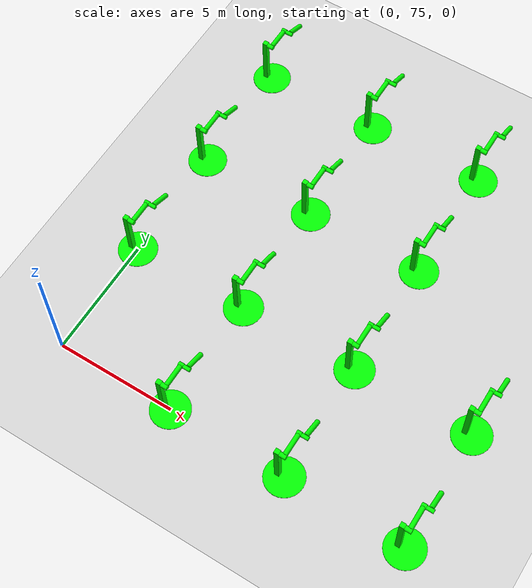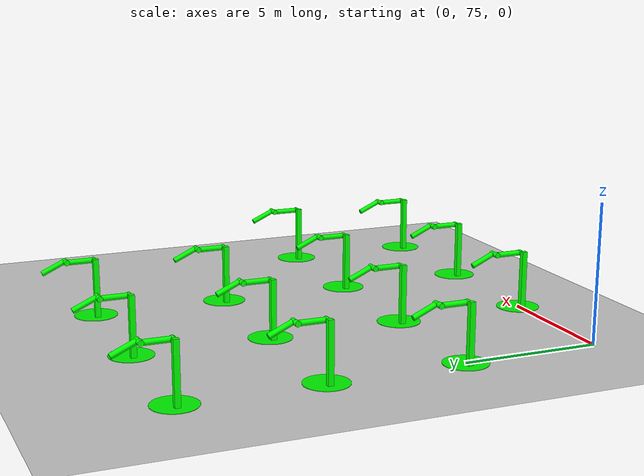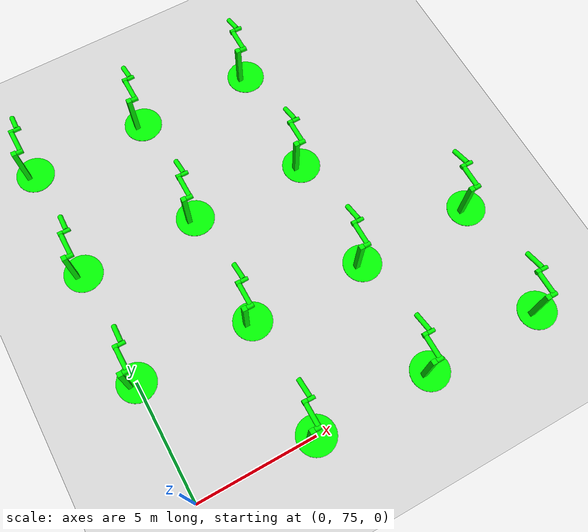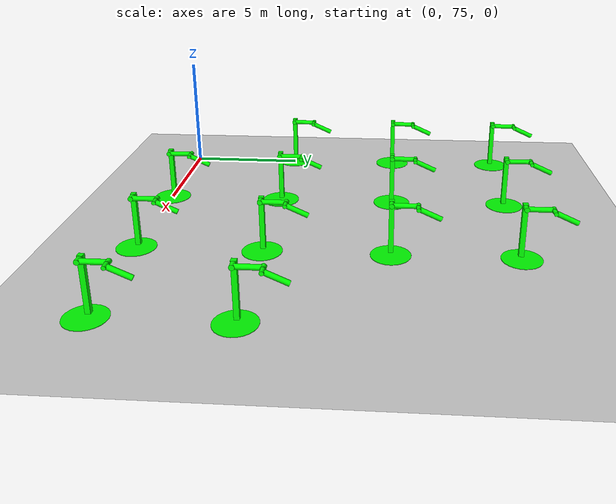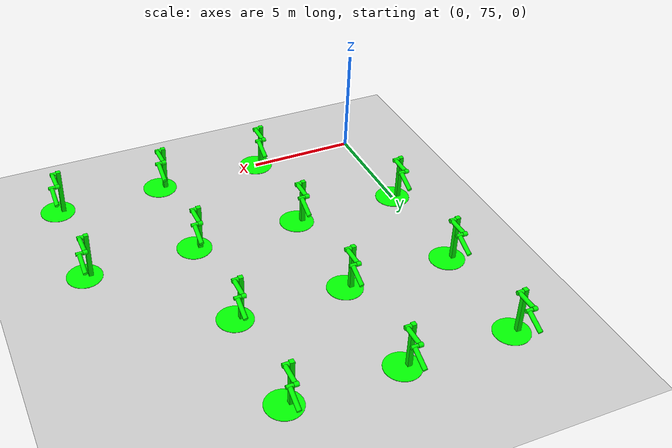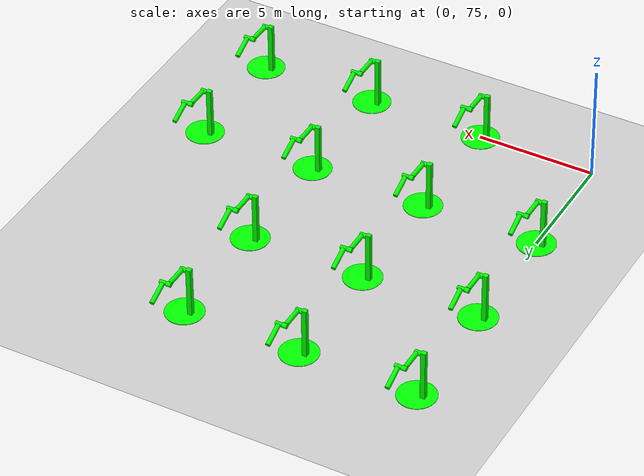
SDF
<sdf version="1.6">
 <world name="double_pendulums">
  <model name="ground_plane">
   <static>true</static>
   <link name="link">
    <collision name="collision">
     <geometry><plane><normal>0 0 1</normal><size>100 100</size></plane></geometry>
    </collision>
    <visual name="visual">
     <geometry><plane><normal>0 0 1</normal><size>100 100</size></plane></geometry>
     <material>
      <ambient>0.8 0.8 0.8 1</ambient>
      <diffuse>0.8 0.8 0.8 1</diffuse>
      <specular>0.8 0.8 0.8 1</specular>
     </material>
    </visual>
   </link>
  </model>
  <model name="dbl_pendulum_386">
   <pose>5 75 0 0 0 0</pose>
   <link name="base">
    <inertial><mass>100</mass></inertial>
    <visual name="vis_plate_on_ground">
     <pose>0 0 0.01 0 0 0</pose>
     <geometry><cylinder><radius>0.8</radius><length>0.02</length></cylinder></geometry>
     <material><ambient>0 1 0 1</ambient><diffuse>0 1 0 1</diffuse><specular>0 1 0 1</specular></material>
    </visual>
    <visual name="vis_pole">
     <pose>-0.275 0 1.1 0 0 0</pose>
     <geometry><box><size>0.2 0.2 2.2</size></box></geometry>
     <material><ambient>0 1 0 1</ambient><diffuse>0 1 0 1</diffuse><specular>0 1 0 1</specular></material>
    </visual>
    <collision name="col_plate_on_ground">
     <pose>0 0 0.01 0 0 0</pose>
     <geometry><cylinder><radius>0.8</radius><length>0.02</length></cylinder></geometry>
    </collision>
    <collision name="col_pole">
     <pose>-0.275 0 1.1 0 0 0</pose>
     <geometry><box><size>0.2 0.2 2.2</size></box></geometry>
    </collision>
   </link>
   <link name="upper_link">
    <pose>0 0 2.1 -1.5708 0 0</pose>
    <inertial><pose>0 0 0.5 0 0 0</pose></inertial>
    <visual name="vis_upper_joint">
     <pose>-0.05 0 0 0 1.5708 0</pose>
     <geometry><cylinder><radius>0.1</radius><length>0.3</length></cylinder></geometry>
     <material><ambient>0 1 0 1</ambient><diffuse>0 1 0 1</diffuse><specular>0 1 0 1</specular></material>
    </visual>
    <visual name="vis_lower_joint">
     <pose>0 0 1.0 0 1.5708 0</pose>
     <geometry><cylinder><radius>0.1</radius><length>0.2</length></cylinder></geometry>
     <material><ambient>0 1 0 1</ambient><diffuse>0 1 0 1</diffuse><specular>0 1 0 1</specular></material>
    </visual>
    <visual name="vis_cylinder">
     <pose>0 0 0.5 0 0 0</pose>
     <geometry><cylinder><radius>0.1</radius><length>0.9</length></cylinder></geometry>
     <material><ambient>0 1 0 1</ambient><diffuse>0 1 0 1</diffuse><specular>0 1 0 1</specular></material>
    </visual>
    <collision name="col_upper_joint">
     <pose>-0.05 0 0 0 1.5708 0</pose>
     <geometry><cylinder><radius>0.1</radius><length>0.3</length></cylinder></geometry>
    </collision>
    <collision name="col_lower_joint">
     <pose>0 0 1.0 0 1.5708 0</pose>
     <geometry><cylinder><radius>0.1</radius><length>0.2</length></cylinder></geometry>
    </collision>
    <collision name="col_cylinder">
     <pose>0 0 0.5 0 0 0</pose>
     <geometry><cylinder><radius>0.1</radius><length>0.9</length></cylinder></geometry>
    </collision>
   </link>
   <link name="lower_link">
    <pose>0.25 1.0 2.1 -2 0 0</pose>
    <inertial><pose>0 0 0.5 0 0 0</pose></inertial>
    <visual name="vis_lower_joint">
     <pose>0 0 0 0 1.5708 0</pose>
     <geometry><cylinder><radius>0.08</radius><length>0.3</length></cylinder></geometry>
     <material><ambient>0 1 0 1</ambient><diffuse>0 1 0 1</diffuse><specular>0 1 0 1</specular></material>
    </visual>
    <visual name="vis_cylinder">
     <pose>0 0 0.5 0 0 0</pose>
     <geometry><cylinder><radius>0.1</radius><length>0.9</length></cylinder></geometry>
     <material><ambient>0 1 0 1</ambient><diffuse>0 1 0 1</diffuse><specular>0 1 0 1</specular></material>
    </visual>
    <collision name="col_lower_joint">
     <pose>0 0 0 0 1.5708 0</pose>
     <geometry><cylinder><radius>0.08</radius><length>0.3</length></cylinder></geometry>
    </collision>
    <collision name="col_cylinder">
     <pose>0 0 0.5 0 0 0</pose>
     <geometry><cylinder><radius>0.1</radius><length>0.9</length></cylinder></geometry>
    </collision>
   </link>
   <joint name="upper_joint" type="revolute">
    <parent>base</parent>
    <child>upper_link</child>
    <axis><xyz>1.0 0 0</xyz></axis>
   </joint>
   <joint name="lower_joint" type="revolute">
    <parent>upper_link</parent>
    <child>lower_link</child>
    <axis><xyz>1.0 0 0</xyz></axis>
   </joint>
  </model>
  <model name="dbl_pendulum_387">
   <pose>10 75 0 0 0 0</pose>
   <link name="base">
    <inertial><mass>100</mass></inertial>
    <visual name="vis_plate_on_ground">
     <pose>0 0 0.01 0 0 0</pose>
     <geometry><cylinder><radius>0.8</radius><length>0.02</length></cylinder></geometry>
     <material><ambient>0 1 0 1</ambient><diffuse>0 1 0 1</diffuse><specular>0 1 0 1</specular></material>
    </visual>
    <visual name="vis_pole">
     <pose>-0.275 0 1.1 0 0 0</pose>
     <geometry><box><size>0.2 0.2 2.2</size></box></geometry>
     <material><ambient>0 1 0 1</ambient><diffuse>0 1 0 1</diffuse><specular>0 1 0 1</specular></material>
    </visual>
    <collision name="col_plate_on_ground">
     <pose>0 0 0.01 0 0 0</pose>
     <geometry><cylinder><radius>0.8</radius><length>0.02</length></cylinder></geometry>
    </collision>
    <collision name="col_pole">
     <pose>-0.275 0 1.1 0 0 0</pose>
     <geometry><box><size>0.2 0.2 2.2</size></box></geometry>
    </collision>
   </link>
   <link name="upper_link">
    <pose>0 0 2.1 -1.5708 0 0</pose>
    <inertial><pose>0 0 0.5 0 0 0</pose></inertial>
    <visual name="vis_upper_joint">
     <pose>-0.05 0 0 0 1.5708 0</pose>
     <geometry><cylinder><radius>0.1</radius><length>0.3</length></cylinder></geometry>
     <material><ambient>0 1 0 1</ambient><diffuse>0 1 0 1</diffuse><specular>0 1 0 1</specular></material>
    </visual>
    <visual name="vis_lower_joint">
     <pose>0 0 1.0 0 1.5708 0</pose>
     <geometry><cylinder><radius>0.1</radius><length>0.2</length></cylinder></geometry>
     <material><ambient>0 1 0 1</ambient><diffuse>0 1 0 1</diffuse><specular>0 1 0 1</specular></material>
    </visual>
    <visual name="vis_cylinder">
     <pose>0 0 0.5 0 0 0</pose>
     <geometry><cylinder><radius>0.1</radius><length>0.9</length></cylinder></geometry>
     <material><ambient>0 1 0 1</ambient><diffuse>0 1 0 1</diffuse><specular>0 1 0 1</specular></material>
    </visual>
    <collision name="col_upper_joint">
     <pose>-0.05 0 0 0 1.5708 0</pose>
     <geometry><cylinder><radius>0.1</radius><length>0.3</length></cylinder></geometry>
    </collision>
    <collision name="col_lower_joint">
     <pose>0 0 1.0 0 1.5708 0</pose>
     <geometry><cylinder><radius>0.1</radius><length>0.2</length></cylinder></geometry>
    </collision>
    <collision name="col_cylinder">
     <pose>0 0 0.5 0 0 0</pose>
     <geometry><cylinder><radius>0.1</radius><length>0.9</length></cylinder></geometry>
    </collision>
   </link>
   <link name="lower_link">
    <pose>0.25 1.0 2.1 -2 0 0</pose>
    <inertial><pose>0 0 0.5 0 0 0</pose></inertial>
    <visual name="vis_lower_joint">
     <pose>0 0 0 0 1.5708 0</pose>
     <geometry><cylinder><radius>0.08</radius><length>0.3</length></cylinder></geometry>
     <material><ambient>0 1 0 1</ambient><diffuse>0 1 0 1</diffuse><specular>0 1 0 1</specular></material>
    </visual>
    <visual name="vis_cylinder">
     <pose>0 0 0.5 0 0 0</pose>
     <geometry><cylinder><radius>0.1</radius><length>0.9</length></cylinder></geometry>
     <material><ambient>0 1 0 1</ambient><diffuse>0 1 0 1</diffuse><specular>0 1 0 1</specular></material>
    </visual>
    <collision name="col_lower_joint">
     <pose>0 0 0 0 1.5708 0</pose>
     <geometry><cylinder><radius>0.08</radius><length>0.3</length></cylinder></geometry>
    </collision>
    <collision name="col_cylinder">
     <pose>0 0 0.5 0 0 0</pose>
     <geometry><cylinder><radius>0.1</radius><length>0.9</length></cylinder></geometry>
    </collision>
   </link>
   <joint name="upper_joint" type="revolute">
    <parent>base</parent>
    <child>upper_link</child>
    <axis><xyz>1.0 0 0</xyz></axis>
   </joint>
   <joint name="lower_joint" type="revolute">
    <parent>upper_link</parent>
    <child>lower_link</child>
    <axis><xyz>1.0 0 0</xyz></axis>
   </joint>
  </model>
  <model name="dbl_pendulum_388">
   <pose>15 75 0 0 0 0</pose>
   <link name="base">
    <inertial><mass>100</mass></inertial>
    <visual name="vis_plate_on_ground">
     <pose>0 0 0.01 0 0 0</pose>
     <geometry><cylinder><radius>0.8</radius><length>0.02</length></cylinder></geometry>
     <material><ambient>0 1 0 1</ambient><diffuse>0 1 0 1</diffuse><specular>0 1 0 1</specular></material>
    </visual>
    <visual name="vis_pole">
     <pose>-0.275 0 1.1 0 0 0</pose>
     <geometry><box><size>0.2 0.2 2.2</size></box></geometry>
     <material><ambient>0 1 0 1</ambient><diffuse>0 1 0 1</diffuse><specular>0 1 0 1</specular></material>
    </visual>
    <collision name="col_plate_on_ground">
     <pose>0 0 0.01 0 0 0</pose>
     <geometry><cylinder><radius>0.8</radius><length>0.02</length></cylinder></geometry>
    </collision>
    <collision name="col_pole">
     <pose>-0.275 0 1.1 0 0 0</pose>
     <geometry><box><size>0.2 0.2 2.2</size></box></geometry>
    </collision>
   </link>
   <link name="upper_link">
    <pose>0 0 2.1 -1.5708 0 0</pose>
    <inertial><pose>0 0 0.5 0 0 0</pose></inertial>
    <visual name="vis_upper_joint">
     <pose>-0.05 0 0 0 1.5708 0</pose>
     <geometry><cylinder><radius>0.1</radius><length>0.3</length></cylinder></geometry>
     <material><ambient>0 1 0 1</ambient><diffuse>0 1 0 1</diffuse><specular>0 1 0 1</specular></material>
    </visual>
    <visual name="vis_lower_joint">
     <pose>0 0 1.0 0 1.5708 0</pose>
     <geometry><cylinder><radius>0.1</radius><length>0.2</length></cylinder></geometry>
     <material><ambient>0 1 0 1</ambient><diffuse>0 1 0 1</diffuse><specular>0 1 0 1</specular></material>
    </visual>
    <visual name="vis_cylinder">
     <pose>0 0 0.5 0 0 0</pose>
     <geometry><cylinder><radius>0.1</radius><length>0.9</length></cylinder></geometry>
     <material><ambient>0 1 0 1</ambient><diffuse>0 1 0 1</diffuse><specular>0 1 0 1</specular></material>
    </visual>
    <collision name="col_upper_joint">
     <pose>-0.05 0 0 0 1.5708 0</pose>
     <geometry><cylinder><radius>0.1</radius><length>0.3</length></cylinder></geometry>
    </collision>
    <collision name="col_lower_joint">
     <pose>0 0 1.0 0 1.5708 0</pose>
     <geometry><cylinder><radius>0.1</radius><length>0.2</length></cylinder></geometry>
    </collision>
    <collision name="col_cylinder">
     <pose>0 0 0.5 0 0 0</pose>
     <geometry><cylinder><radius>0.1</radius><length>0.9</length></cylinder></geometry>
    </collision>
   </link>
   <link name="lower_link">
    <pose>0.25 1.0 2.1 -2 0 0</pose>
    <inertial><pose>0 0 0.5 0 0 0</pose></inertial>
    <visual name="vis_lower_joint">
     <pose>0 0 0 0 1.5708 0</pose>
     <geometry><cylinder><radius>0.08</radius><length>0.3</length></cylinder></geometry>
     <material><ambient>0 1 0 1</ambient><diffuse>0 1 0 1</diffuse><specular>0 1 0 1</specular></material>
    </visual>
    <visual name="vis_cylinder">
     <pose>0 0 0.5 0 0 0</pose>
     <geometry><cylinder><radius>0.1</radius><length>0.9</length></cylinder></geometry>
     <material><ambient>0 1 0 1</ambient><diffuse>0 1 0 1</diffuse><specular>0 1 0 1</specular></material>
    </visual>
    <collision name="col_lower_joint">
     <pose>0 0 0 0 1.5708 0</pose>
     <geometry><cylinder><radius>0.08</radius><length>0.3</length></cylinder></geometry>
    </collision>
    <collision name="col_cylinder">
     <pose>0 0 0.5 0 0 0</pose>
     <geometry><cylinder><radius>0.1</radius><length>0.9</length></cylinder></geometry>
    </collision>
   </link>
   <joint name="upper_joint" type="revolute">
    <parent>base</parent>
    <child>upper_link</child>
    <axis><xyz>1.0 0 0</xyz></axis>
   </joint>
   <joint name="lower_joint" type="revolute">
    <parent>upper_link</parent>
    <child>lower_link</child>
    <axis><xyz>1.0 0 0</xyz></axis>
   </joint>
  </model>
  <model name="dbl_pendulum_410">
   <pose>0 80 0 0 0 0</pose>
   <link name="base">
    <inertial><mass>100</mass></inertial>
    <visual name="vis_plate_on_ground">
     <pose>0 0 0.01 0 0 0</pose>
     <geometry><cylinder><radius>0.8</radius><length>0.02</length></cylinder></geometry>
     <material><ambient>0 1 0 1</ambient><diffuse>0 1 0 1</diffuse><specular>0 1 0 1</specular></material>
    </visual>
    <visual name="vis_pole">
     <pose>-0.275 0 1.1 0 0 0</pose>
     <geometry><box><size>0.2 0.2 2.2</size></box></geometry>
     <material><ambient>0 1 0 1</ambient><diffuse>0 1 0 1</diffuse><specular>0 1 0 1</specular></material>
    </visual>
    <collision name="col_plate_on_ground">
     <pose>0 0 0.01 0 0 0</pose>
     <geometry><cylinder><radius>0.8</radius><length>0.02</length></cylinder></geometry>
    </collision>
    <collision name="col_pole">
     <pose>-0.275 0 1.1 0 0 0</pose>
     <geometry><box><size>0.2 0.2 2.2</size></box></geometry>
    </collision>
   </link>
   <link name="upper_link">
    <pose>0 0 2.1 -1.5708 0 0</pose>
    <inertial><pose>0 0 0.5 0 0 0</pose></inertial>
    <visual name="vis_upper_joint">
     <pose>-0.05 0 0 0 1.5708 0</pose>
     <geometry><cylinder><radius>0.1</radius><length>0.3</length></cylinder></geometry>
     <material><ambient>0 1 0 1</ambient><diffuse>0 1 0 1</diffuse><specular>0 1 0 1</specular></material>
    </visual>
    <visual name="vis_lower_joint">
     <pose>0 0 1.0 0 1.5708 0</pose>
     <geometry><cylinder><radius>0.1</radius><length>0.2</length></cylinder></geometry>
     <material><ambient>0 1 0 1</ambient><diffuse>0 1 0 1</diffuse><specular>0 1 0 1</specular></material>
    </visual>
    <visual name="vis_cylinder">
     <pose>0 0 0.5 0 0 0</pose>
     <geometry><cylinder><radius>0.1</radius><length>0.9</length></cylinder></geometry>
     <material><ambient>0 1 0 1</ambient><diffuse>0 1 0 1</diffuse><specular>0 1 0 1</specular></material>
    </visual>
    <collision name="col_upper_joint">
     <pose>-0.05 0 0 0 1.5708 0</pose>
     <geometry><cylinder><radius>0.1</radius><length>0.3</length></cylinder></geometry>
    </collision>
    <collision name="col_lower_joint">
     <pose>0 0 1.0 0 1.5708 0</pose>
     <geometry><cylinder><radius>0.1</radius><length>0.2</length></cylinder></geometry>
    </collision>
    <collision name="col_cylinder">
     <pose>0 0 0.5 0 0 0</pose>
     <geometry><cylinder><radius>0.1</radius><length>0.9</length></cylinder></geometry>
    </collision>
   </link>
   <link name="lower_link">
    <pose>0.25 1.0 2.1 -2 0 0</pose>
    <inertial><pose>0 0 0.5 0 0 0</pose></inertial>
    <visual name="vis_lower_joint">
     <pose>0 0 0 0 1.5708 0</pose>
     <geometry><cylinder><radius>0.08</radius><length>0.3</length></cylinder></geometry>
     <material><ambient>0 1 0 1</ambient><diffuse>0 1 0 1</diffuse><specular>0 1 0 1</specular></material>
    </visual>
    <visual name="vis_cylinder">
     <pose>0 0 0.5 0 0 0</pose>
     <geometry><cylinder><radius>0.1</radius><length>0.9</length></cylinder></geometry>
     <material><ambient>0 1 0 1</ambient><diffuse>0 1 0 1</diffuse><specular>0 1 0 1</specular></material>
    </visual>
    <collision name="col_lower_joint">
     <pose>0 0 0 0 1.5708 0</pose>
     <geometry><cylinder><radius>0.08</radius><length>0.3</length></cylinder></geometry>
    </collision>
    <collision name="col_cylinder">
     <pose>0 0 0.5 0 0 0</pose>
     <geometry><cylinder><radius>0.1</radius><length>0.9</length></cylinder></geometry>
    </collision>
   </link>
   <joint name="upper_joint" type="revolute">
    <parent>base</parent>
    <child>upper_link</child>
    <axis><xyz>1.0 0 0</xyz></axis>
   </joint>
   <joint name="lower_joint" type="revolute">
    <parent>upper_link</parent>
    <child>lower_link</child>
    <axis><xyz>1.0 0 0</xyz></axis>
   </joint>
  </model>
  <model name="dbl_pendulum_411">
   <pose>5 80 0 0 0 0</pose>
   <link name="base">
    <inertial><mass>100</mass></inertial>
    <visual name="vis_plate_on_ground">
     <pose>0 0 0.01 0 0 0</pose>
     <geometry><cylinder><radius>0.8</radius><length>0.02</length></cylinder></geometry>
     <material><ambient>0 1 0 1</ambient><diffuse>0 1 0 1</diffuse><specular>0 1 0 1</specular></material>
    </visual>
    <visual name="vis_pole">
     <pose>-0.275 0 1.1 0 0 0</pose>
     <geometry><box><size>0.2 0.2 2.2</size></box></geometry>
     <material><ambient>0 1 0 1</ambient><diffuse>0 1 0 1</diffuse><specular>0 1 0 1</specular></material>
    </visual>
    <collision name="col_plate_on_ground">
     <pose>0 0 0.01 0 0 0</pose>
     <geometry><cylinder><radius>0.8</radius><length>0.02</length></cylinder></geometry>
    </collision>
    <collision name="col_pole">
     <pose>-0.275 0 1.1 0 0 0</pose>
     <geometry><box><size>0.2 0.2 2.2</size></box></geometry>
    </collision>
   </link>
   <link name="upper_link">
    <pose>0 0 2.1 -1.5708 0 0</pose>
    <inertial><pose>0 0 0.5 0 0 0</pose></inertial>
    <visual name="vis_upper_joint">
     <pose>-0.05 0 0 0 1.5708 0</pose>
     <geometry><cylinder><radius>0.1</radius><length>0.3</length></cylinder></geometry>
     <material><ambient>0 1 0 1</ambient><diffuse>0 1 0 1</diffuse><specular>0 1 0 1</specular></material>
    </visual>
    <visual name="vis_lower_joint">
     <pose>0 0 1.0 0 1.5708 0</pose>
     <geometry><cylinder><radius>0.1</radius><length>0.2</length></cylinder></geometry>
     <material><ambient>0 1 0 1</ambient><diffuse>0 1 0 1</diffuse><specular>0 1 0 1</specular></material>
    </visual>
    <visual name="vis_cylinder">
     <pose>0 0 0.5 0 0 0</pose>
     <geometry><cylinder><radius>0.1</radius><length>0.9</length></cylinder></geometry>
     <material><ambient>0 1 0 1</ambient><diffuse>0 1 0 1</diffuse><specular>0 1 0 1</specular></material>
    </visual>
    <collision name="col_upper_joint">
     <pose>-0.05 0 0 0 1.5708 0</pose>
     <geometry><cylinder><radius>0.1</radius><length>0.3</length></cylinder></geometry>
    </collision>
    <collision name="col_lower_joint">
     <pose>0 0 1.0 0 1.5708 0</pose>
     <geometry><cylinder><radius>0.1</radius><length>0.2</length></cylinder></geometry>
    </collision>
    <collision name="col_cylinder">
     <pose>0 0 0.5 0 0 0</pose>
     <geometry><cylinder><radius>0.1</radius><length>0.9</length></cylinder></geometry>
    </collision>
   </link>
   <link name="lower_link">
    <pose>0.25 1.0 2.1 -2 0 0</pose>
    <inertial><pose>0 0 0.5 0 0 0</pose></inertial>
    <visual name="vis_lower_joint">
     <pose>0 0 0 0 1.5708 0</pose>
     <geometry><cylinder><radius>0.08</radius><length>0.3</length></cylinder></geometry>
     <material><ambient>0 1 0 1</ambient><diffuse>0 1 0 1</diffuse><specular>0 1 0 1</specular></material>
    </visual>
    <visual name="vis_cylinder">
     <pose>0 0 0.5 0 0 0</pose>
     <geometry><cylinder><radius>0.1</radius><length>0.9</length></cylinder></geometry>
     <material><ambient>0 1 0 1</ambient><diffuse>0 1 0 1</diffuse><specular>0 1 0 1</specular></material>
    </visual>
    <collision name="col_lower_joint">
     <pose>0 0 0 0 1.5708 0</pose>
     <geometry><cylinder><radius>0.08</radius><length>0.3</length></cylinder></geometry>
    </collision>
    <collision name="col_cylinder">
     <pose>0 0 0.5 0 0 0</pose>
     <geometry><cylinder><radius>0.1</radius><length>0.9</length></cylinder></geometry>
    </collision>
   </link>
   <joint name="upper_joint" type="revolute">
    <parent>base</parent>
    <child>upper_link</child>
    <axis><xyz>1.0 0 0</xyz></axis>
   </joint>
   <joint name="lower_joint" type="revolute">
    <parent>upper_link</parent>
    <child>lower_link</child>
    <axis><xyz>1.0 0 0</xyz></axis>
   </joint>
  </model>
  <model name="dbl_pendulum_412">
   <pose>10 80 0 0 0 0</pose>
   <link name="base">
    <inertial><mass>100</mass></inertial>
    <visual name="vis_plate_on_ground">
     <pose>0 0 0.01 0 0 0</pose>
     <geometry><cylinder><radius>0.8</radius><length>0.02</length></cylinder></geometry>
     <material><ambient>0 1 0 1</ambient><diffuse>0 1 0 1</diffuse><specular>0 1 0 1</specular></material>
    </visual>
    <visual name="vis_pole">
     <pose>-0.275 0 1.1 0 0 0</pose>
     <geometry><box><size>0.2 0.2 2.2</size></box></geometry>
     <material><ambient>0 1 0 1</ambient><diffuse>0 1 0 1</diffuse><specular>0 1 0 1</specular></material>
    </visual>
    <collision name="col_plate_on_ground">
     <pose>0 0 0.01 0 0 0</pose>
     <geometry><cylinder><radius>0.8</radius><length>0.02</length></cylinder></geometry>
    </collision>
    <collision name="col_pole">
     <pose>-0.275 0 1.1 0 0 0</pose>
     <geometry><box><size>0.2 0.2 2.2</size></box></geometry>
    </collision>
   </link>
   <link name="upper_link">
    <pose>0 0 2.1 -1.5708 0 0</pose>
    <inertial><pose>0 0 0.5 0 0 0</pose></inertial>
    <visual name="vis_upper_joint">
     <pose>-0.05 0 0 0 1.5708 0</pose>
     <geometry><cylinder><radius>0.1</radius><length>0.3</length></cylinder></geometry>
     <material><ambient>0 1 0 1</ambient><diffuse>0 1 0 1</diffuse><specular>0 1 0 1</specular></material>
    </visual>
    <visual name="vis_lower_joint">
     <pose>0 0 1.0 0 1.5708 0</pose>
     <geometry><cylinder><radius>0.1</radius><length>0.2</length></cylinder></geometry>
     <material><ambient>0 1 0 1</ambient><diffuse>0 1 0 1</diffuse><specular>0 1 0 1</specular></material>
    </visual>
    <visual name="vis_cylinder">
     <pose>0 0 0.5 0 0 0</pose>
     <geometry><cylinder><radius>0.1</radius><length>0.9</length></cylinder></geometry>
     <material><ambient>0 1 0 1</ambient><diffuse>0 1 0 1</diffuse><specular>0 1 0 1</specular></material>
    </visual>
    <collision name="col_upper_joint">
     <pose>-0.05 0 0 0 1.5708 0</pose>
     <geometry><cylinder><radius>0.1</radius><length>0.3</length></cylinder></geometry>
    </collision>
    <collision name="col_lower_joint">
     <pose>0 0 1.0 0 1.5708 0</pose>
     <geometry><cylinder><radius>0.1</radius><length>0.2</length></cylinder></geometry>
    </collision>
    <collision name="col_cylinder">
     <pose>0 0 0.5 0 0 0</pose>
     <geometry><cylinder><radius>0.1</radius><length>0.9</length></cylinder></geometry>
    </collision>
   </link>
   <link name="lower_link">
    <pose>0.25 1.0 2.1 -2 0 0</pose>
    <inertial><pose>0 0 0.5 0 0 0</pose></inertial>
    <visual name="vis_lower_joint">
     <pose>0 0 0 0 1.5708 0</pose>
     <geometry><cylinder><radius>0.08</radius><length>0.3</length></cylinder></geometry>
     <material><ambient>0 1 0 1</ambient><diffuse>0 1 0 1</diffuse><specular>0 1 0 1</specular></material>
    </visual>
    <visual name="vis_cylinder">
     <pose>0 0 0.5 0 0 0</pose>
     <geometry><cylinder><radius>0.1</radius><length>0.9</length></cylinder></geometry>
     <material><ambient>0 1 0 1</ambient><diffuse>0 1 0 1</diffuse><specular>0 1 0 1</specular></material>
    </visual>
    <collision name="col_lower_joint">
     <pose>0 0 0 0 1.5708 0</pose>
     <geometry><cylinder><radius>0.08</radius><length>0.3</length></cylinder></geometry>
    </collision>
    <collision name="col_cylinder">
     <pose>0 0 0.5 0 0 0</pose>
     <geometry><cylinder><radius>0.1</radius><length>0.9</length></cylinder></geometry>
    </collision>
   </link>
   <joint name="upper_joint" type="revolute">
    <parent>base</parent>
    <child>upper_link</child>
    <axis><xyz>1.0 0 0</xyz></axis>
   </joint>
   <joint name="lower_joint" type="revolute">
    <parent>upper_link</parent>
    <child>lower_link</child>
    <axis><xyz>1.0 0 0</xyz></axis>
   </joint>
  </model>
  <model name="dbl_pendulum_413">
   <pose>15 80 0 0 0 0</pose>
   <link name="base">
    <inertial><mass>100</mass></inertial>
    <visual name="vis_plate_on_ground">
     <pose>0 0 0.01 0 0 0</pose>
     <geometry><cylinder><radius>0.8</radius><length>0.02</length></cylinder></geometry>
     <material><ambient>0 1 0 1</ambient><diffuse>0 1 0 1</diffuse><specular>0 1 0 1</specular></material>
    </visual>
    <visual name="vis_pole">
     <pose>-0.275 0 1.1 0 0 0</pose>
     <geometry><box><size>0.2 0.2 2.2</size></box></geometry>
     <material><ambient>0 1 0 1</ambient><diffuse>0 1 0 1</diffuse><specular>0 1 0 1</specular></material>
    </visual>
    <collision name="col_plate_on_ground">
     <pose>0 0 0.01 0 0 0</pose>
     <geometry><cylinder><radius>0.8</radius><length>0.02</length></cylinder></geometry>
    </collision>
    <collision name="col_pole">
     <pose>-0.275 0 1.1 0 0 0</pose>
     <geometry><box><size>0.2 0.2 2.2</size></box></geometry>
    </collision>
   </link>
   <link name="upper_link">
    <pose>0 0 2.1 -1.5708 0 0</pose>
    <inertial><pose>0 0 0.5 0 0 0</pose></inertial>
    <visual name="vis_upper_joint">
     <pose>-0.05 0 0 0 1.5708 0</pose>
     <geometry><cylinder><radius>0.1</radius><length>0.3</length></cylinder></geometry>
     <material><ambient>0 1 0 1</ambient><diffuse>0 1 0 1</diffuse><specular>0 1 0 1</specular></material>
    </visual>
    <visual name="vis_lower_joint">
     <pose>0 0 1.0 0 1.5708 0</pose>
     <geometry><cylinder><radius>0.1</radius><length>0.2</length></cylinder></geometry>
     <material><ambient>0 1 0 1</ambient><diffuse>0 1 0 1</diffuse><specular>0 1 0 1</specular></material>
    </visual>
    <visual name="vis_cylinder">
     <pose>0 0 0.5 0 0 0</pose>
     <geometry><cylinder><radius>0.1</radius><length>0.9</length></cylinder></geometry>
     <material><ambient>0 1 0 1</ambient><diffuse>0 1 0 1</diffuse><specular>0 1 0 1</specular></material>
    </visual>
    <collision name="col_upper_joint">
     <pose>-0.05 0 0 0 1.5708 0</pose>
     <geometry><cylinder><radius>0.1</radius><length>0.3</length></cylinder></geometry>
    </collision>
    <collision name="col_lower_joint">
     <pose>0 0 1.0 0 1.5708 0</pose>
     <geometry><cylinder><radius>0.1</radius><length>0.2</length></cylinder></geometry>
    </collision>
    <collision name="col_cylinder">
     <pose>0 0 0.5 0 0 0</pose>
     <geometry><cylinder><radius>0.1</radius><length>0.9</length></cylinder></geometry>
    </collision>
   </link>
   <link name="lower_link">
    <pose>0.25 1.0 2.1 -2 0 0</pose>
    <inertial><pose>0 0 0.5 0 0 0</pose></inertial>
    <visual name="vis_lower_joint">
     <pose>0 0 0 0 1.5708 0</pose>
     <geometry><cylinder><radius>0.08</radius><length>0.3</length></cylinder></geometry>
     <material><ambient>0 1 0 1</ambient><diffuse>0 1 0 1</diffuse><specular>0 1 0 1</specular></material>
    </visual>
    <visual name="vis_cylinder">
     <pose>0 0 0.5 0 0 0</pose>
     <geometry><cylinder><radius>0.1</radius><length>0.9</length></cylinder></geometry>
     <material><ambient>0 1 0 1</ambient><diffuse>0 1 0 1</diffuse><specular>0 1 0 1</specular></material>
    </visual>
    <collision name="col_lower_joint">
     <pose>0 0 0 0 1.5708 0</pose>
     <geometry><cylinder><radius>0.08</radius><length>0.3</length></cylinder></geometry>
    </collision>
    <collision name="col_cylinder">
     <pose>0 0 0.5 0 0 0</pose>
     <geometry><cylinder><radius>0.1</radius><length>0.9</length></cylinder></geometry>
    </collision>
   </link>
   <joint name="upper_joint" type="revolute">
    <parent>base</parent>
    <child>upper_link</child>
    <axis><xyz>1.0 0 0</xyz></axis>
   </joint>
   <joint name="lower_joint" type="revolute">
    <parent>upper_link</parent>
    <child>lower_link</child>
    <axis><xyz>1.0 0 0</xyz></axis>
   </joint>
  </model>
  <model name="dbl_pendulum_435">
   <pose>0 85 0 0 0 0</pose>
   <link name="base">
    <inertial><mass>100</mass></inertial>
    <visual name="vis_plate_on_ground">
     <pose>0 0 0.01 0 0 0</pose>
     <geometry><cylinder><radius>0.8</radius><length>0.02</length></cylinder></geometry>
     <material><ambient>0 1 0 1</ambient><diffuse>0 1 0 1</diffuse><specular>0 1 0 1</specular></material>
    </visual>
    <visual name="vis_pole">
     <pose>-0.275 0 1.1 0 0 0</pose>
     <geometry><box><size>0.2 0.2 2.2</size></box></geometry>
     <material><ambient>0 1 0 1</ambient><diffuse>0 1 0 1</diffuse><specular>0 1 0 1</specular></material>
    </visual>
    <collision name="col_plate_on_ground">
     <pose>0 0 0.01 0 0 0</pose>
     <geometry><cylinder><radius>0.8</radius><length>0.02</length></cylinder></geometry>
    </collision>
    <collision name="col_pole">
     <pose>-0.275 0 1.1 0 0 0</pose>
     <geometry><box><size>0.2 0.2 2.2</size></box></geometry>
    </collision>
   </link>
   <link name="upper_link">
    <pose>0 0 2.1 -1.5708 0 0</pose>
    <inertial><pose>0 0 0.5 0 0 0</pose></inertial>
    <visual name="vis_upper_joint">
     <pose>-0.05 0 0 0 1.5708 0</pose>
     <geometry><cylinder><radius>0.1</radius><length>0.3</length></cylinder></geometry>
     <material><ambient>0 1 0 1</ambient><diffuse>0 1 0 1</diffuse><specular>0 1 0 1</specular></material>
    </visual>
    <visual name="vis_lower_joint">
     <pose>0 0 1.0 0 1.5708 0</pose>
     <geometry><cylinder><radius>0.1</radius><length>0.2</length></cylinder></geometry>
     <material><ambient>0 1 0 1</ambient><diffuse>0 1 0 1</diffuse><specular>0 1 0 1</specular></material>
    </visual>
    <visual name="vis_cylinder">
     <pose>0 0 0.5 0 0 0</pose>
     <geometry><cylinder><radius>0.1</radius><length>0.9</length></cylinder></geometry>
     <material><ambient>0 1 0 1</ambient><diffuse>0 1 0 1</diffuse><specular>0 1 0 1</specular></material>
    </visual>
    <collision name="col_upper_joint">
     <pose>-0.05 0 0 0 1.5708 0</pose>
     <geometry><cylinder><radius>0.1</radius><length>0.3</length></cylinder></geometry>
    </collision>
    <collision name="col_lower_joint">
     <pose>0 0 1.0 0 1.5708 0</pose>
     <geometry><cylinder><radius>0.1</radius><length>0.2</length></cylinder></geometry>
    </collision>
    <collision name="col_cylinder">
     <pose>0 0 0.5 0 0 0</pose>
     <geometry><cylinder><radius>0.1</radius><length>0.9</length></cylinder></geometry>
    </collision>
   </link>
   <link name="lower_link">
    <pose>0.25 1.0 2.1 -2 0 0</pose>
    <inertial><pose>0 0 0.5 0 0 0</pose></inertial>
    <visual name="vis_lower_joint">
     <pose>0 0 0 0 1.5708 0</pose>
     <geometry><cylinder><radius>0.08</radius><length>0.3</length></cylinder></geometry>
     <material><ambient>0 1 0 1</ambient><diffuse>0 1 0 1</diffuse><specular>0 1 0 1</specular></material>
    </visual>
    <visual name="vis_cylinder">
     <pose>0 0 0.5 0 0 0</pose>
     <geometry><cylinder><radius>0.1</radius><length>0.9</length></cylinder></geometry>
     <material><ambient>0 1 0 1</ambient><diffuse>0 1 0 1</diffuse><specular>0 1 0 1</specular></material>
    </visual>
    <collision name="col_lower_joint">
     <pose>0 0 0 0 1.5708 0</pose>
     <geometry><cylinder><radius>0.08</radius><length>0.3</length></cylinder></geometry>
    </collision>
    <collision name="col_cylinder">
     <pose>0 0 0.5 0 0 0</pose>
     <geometry><cylinder><radius>0.1</radius><length>0.9</length></cylinder></geometry>
    </collision>
   </link>
   <joint name="upper_joint" type="revolute">
    <parent>base</parent>
    <child>upper_link</child>
    <axis><xyz>1.0 0 0</xyz></axis>
   </joint>
   <joint name="lower_joint" type="revolute">
    <parent>upper_link</parent>
    <child>lower_link</child>
    <axis><xyz>1.0 0 0</xyz></axis>
   </joint>
  </model>
  <model name="dbl_pendulum_436">
   <pose>5 85 0 0 0 0</pose>
   <link name="base">
    <inertial><mass>100</mass></inertial>
    <visual name="vis_plate_on_ground">
     <pose>0 0 0.01 0 0 0</pose>
     <geometry><cylinder><radius>0.8</radius><length>0.02</length></cylinder></geometry>
     <material><ambient>0 1 0 1</ambient><diffuse>0 1 0 1</diffuse><specular>0 1 0 1</specular></material>
    </visual>
    <visual name="vis_pole">
     <pose>-0.275 0 1.1 0 0 0</pose>
     <geometry><box><size>0.2 0.2 2.2</size></box></geometry>
     <material><ambient>0 1 0 1</ambient><diffuse>0 1 0 1</diffuse><specular>0 1 0 1</specular></material>
    </visual>
    <collision name="col_plate_on_ground">
     <pose>0 0 0.01 0 0 0</pose>
     <geometry><cylinder><radius>0.8</radius><length>0.02</length></cylinder></geometry>
    </collision>
    <collision name="col_pole">
     <pose>-0.275 0 1.1 0 0 0</pose>
     <geometry><box><size>0.2 0.2 2.2</size></box></geometry>
    </collision>
   </link>
   <link name="upper_link">
    <pose>0 0 2.1 -1.5708 0 0</pose>
    <inertial><pose>0 0 0.5 0 0 0</pose></inertial>
    <visual name="vis_upper_joint">
     <pose>-0.05 0 0 0 1.5708 0</pose>
     <geometry><cylinder><radius>0.1</radius><length>0.3</length></cylinder></geometry>
     <material><ambient>0 1 0 1</ambient><diffuse>0 1 0 1</diffuse><specular>0 1 0 1</specular></material>
    </visual>
    <visual name="vis_lower_joint">
     <pose>0 0 1.0 0 1.5708 0</pose>
     <geometry><cylinder><radius>0.1</radius><length>0.2</length></cylinder></geometry>
     <material><ambient>0 1 0 1</ambient><diffuse>0 1 0 1</diffuse><specular>0 1 0 1</specular></material>
    </visual>
    <visual name="vis_cylinder">
     <pose>0 0 0.5 0 0 0</pose>
     <geometry><cylinder><radius>0.1</radius><length>0.9</length></cylinder></geometry>
     <material><ambient>0 1 0 1</ambient><diffuse>0 1 0 1</diffuse><specular>0 1 0 1</specular></material>
    </visual>
    <collision name="col_upper_joint">
     <pose>-0.05 0 0 0 1.5708 0</pose>
     <geometry><cylinder><radius>0.1</radius><length>0.3</length></cylinder></geometry>
    </collision>
    <collision name="col_lower_joint">
     <pose>0 0 1.0 0 1.5708 0</pose>
     <geometry><cylinder><radius>0.1</radius><length>0.2</length></cylinder></geometry>
    </collision>
    <collision name="col_cylinder">
     <pose>0 0 0.5 0 0 0</pose>
     <geometry><cylinder><radius>0.1</radius><length>0.9</length></cylinder></geometry>
    </collision>
   </link>
   <link name="lower_link">
    <pose>0.25 1.0 2.1 -2 0 0</pose>
    <inertial><pose>0 0 0.5 0 0 0</pose></inertial>
    <visual name="vis_lower_joint">
     <pose>0 0 0 0 1.5708 0</pose>
     <geometry><cylinder><radius>0.08</radius><length>0.3</length></cylinder></geometry>
     <material><ambient>0 1 0 1</ambient><diffuse>0 1 0 1</diffuse><specular>0 1 0 1</specular></material>
    </visual>
    <visual name="vis_cylinder">
     <pose>0 0 0.5 0 0 0</pose>
     <geometry><cylinder><radius>0.1</radius><length>0.9</length></cylinder></geometry>
     <material><ambient>0 1 0 1</ambient><diffuse>0 1 0 1</diffuse><specular>0 1 0 1</specular></material>
    </visual>
    <collision name="col_lower_joint">
     <pose>0 0 0 0 1.5708 0</pose>
     <geometry><cylinder><radius>0.08</radius><length>0.3</length></cylinder></geometry>
    </collision>
    <collision name="col_cylinder">
     <pose>0 0 0.5 0 0 0</pose>
     <geometry><cylinder><radius>0.1</radius><length>0.9</length></cylinder></geometry>
    </collision>
   </link>
   <joint name="upper_joint" type="revolute">
    <parent>base</parent>
    <child>upper_link</child>
    <axis><xyz>1.0 0 0</xyz></axis>
   </joint>
   <joint name="lower_joint" type="revolute">
    <parent>upper_link</parent>
    <child>lower_link</child>
    <axis><xyz>1.0 0 0</xyz></axis>
   </joint>
  </model>
  <model name="dbl_pendulum_437">
   <pose>10 85 0 0 0 0</pose>
   <link name="base">
    <inertial><mass>100</mass></inertial>
    <visual name="vis_plate_on_ground">
     <pose>0 0 0.01 0 0 0</pose>
     <geometry><cylinder><radius>0.8</radius><length>0.02</length></cylinder></geometry>
     <material><ambient>0 1 0 1</ambient><diffuse>0 1 0 1</diffuse><specular>0 1 0 1</specular></material>
    </visual>
    <visual name="vis_pole">
     <pose>-0.275 0 1.1 0 0 0</pose>
     <geometry><box><size>0.2 0.2 2.2</size></box></geometry>
     <material><ambient>0 1 0 1</ambient><diffuse>0 1 0 1</diffuse><specular>0 1 0 1</specular></material>
    </visual>
    <collision name="col_plate_on_ground">
     <pose>0 0 0.01 0 0 0</pose>
     <geometry><cylinder><radius>0.8</radius><length>0.02</length></cylinder></geometry>
    </collision>
    <collision name="col_pole">
     <pose>-0.275 0 1.1 0 0 0</pose>
     <geometry><box><size>0.2 0.2 2.2</size></box></geometry>
    </collision>
   </link>
   <link name="upper_link">
    <pose>0 0 2.1 -1.5708 0 0</pose>
    <inertial><pose>0 0 0.5 0 0 0</pose></inertial>
    <visual name="vis_upper_joint">
     <pose>-0.05 0 0 0 1.5708 0</pose>
     <geometry><cylinder><radius>0.1</radius><length>0.3</length></cylinder></geometry>
     <material><ambient>0 1 0 1</ambient><diffuse>0 1 0 1</diffuse><specular>0 1 0 1</specular></material>
    </visual>
    <visual name="vis_lower_joint">
     <pose>0 0 1.0 0 1.5708 0</pose>
     <geometry><cylinder><radius>0.1</radius><length>0.2</length></cylinder></geometry>
     <material><ambient>0 1 0 1</ambient><diffuse>0 1 0 1</diffuse><specular>0 1 0 1</specular></material>
    </visual>
    <visual name="vis_cylinder">
     <pose>0 0 0.5 0 0 0</pose>
     <geometry><cylinder><radius>0.1</radius><length>0.9</length></cylinder></geometry>
     <material><ambient>0 1 0 1</ambient><diffuse>0 1 0 1</diffuse><specular>0 1 0 1</specular></material>
    </visual>
    <collision name="col_upper_joint">
     <pose>-0.05 0 0 0 1.5708 0</pose>
     <geometry><cylinder><radius>0.1</radius><length>0.3</length></cylinder></geometry>
    </collision>
    <collision name="col_lower_joint">
     <pose>0 0 1.0 0 1.5708 0</pose>
     <geometry><cylinder><radius>0.1</radius><length>0.2</length></cylinder></geometry>
    </collision>
    <collision name="col_cylinder">
     <pose>0 0 0.5 0 0 0</pose>
     <geometry><cylinder><radius>0.1</radius><length>0.9</length></cylinder></geometry>
    </collision>
   </link>
   <link name="lower_link">
    <pose>0.25 1.0 2.1 -2 0 0</pose>
    <inertial><pose>0 0 0.5 0 0 0</pose></inertial>
    <visual name="vis_lower_joint">
     <pose>0 0 0 0 1.5708 0</pose>
     <geometry><cylinder><radius>0.08</radius><length>0.3</length></cylinder></geometry>
     <material><ambient>0 1 0 1</ambient><diffuse>0 1 0 1</diffuse><specular>0 1 0 1</specular></material>
    </visual>
    <visual name="vis_cylinder">
     <pose>0 0 0.5 0 0 0</pose>
     <geometry><cylinder><radius>0.1</radius><length>0.9</length></cylinder></geometry>
     <material><ambient>0 1 0 1</ambient><diffuse>0 1 0 1</diffuse><specular>0 1 0 1</specular></material>
    </visual>
    <collision name="col_lower_joint">
     <pose>0 0 0 0 1.5708 0</pose>
     <geometry><cylinder><radius>0.08</radius><length>0.3</length></cylinder></geometry>
    </collision>
    <collision name="col_cylinder">
     <pose>0 0 0.5 0 0 0</pose>
     <geometry><cylinder><radius>0.1</radius><length>0.9</length></cylinder></geometry>
    </collision>
   </link>
   <joint name="upper_joint" type="revolute">
    <parent>base</parent>
    <child>upper_link</child>
    <axis><xyz>1.0 0 0</xyz></axis>
   </joint>
   <joint name="lower_joint" type="revolute">
    <parent>upper_link</parent>
    <child>lower_link</child>
    <axis><xyz>1.0 0 0</xyz></axis>
   </joint>
  </model>
  <model name="dbl_pendulum_460">
   <pose>0 90 0 0 0 0</pose>
   <link name="base">
    <inertial><mass>100</mass></inertial>
    <visual name="vis_plate_on_ground">
     <pose>0 0 0.01 0 0 0</pose>
     <geometry><cylinder><radius>0.8</radius><length>0.02</length></cylinder></geometry>
     <material><ambient>0 1 0 1</ambient><diffuse>0 1 0 1</diffuse><specular>0 1 0 1</specular></material>
    </visual>
    <visual name="vis_pole">
     <pose>-0.275 0 1.1 0 0 0</pose>
     <geometry><box><size>0.2 0.2 2.2</size></box></geometry>
     <material><ambient>0 1 0 1</ambient><diffuse>0 1 0 1</diffuse><specular>0 1 0 1</specular></material>
    </visual>
    <collision name="col_plate_on_ground">
     <pose>0 0 0.01 0 0 0</pose>
     <geometry><cylinder><radius>0.8</radius><length>0.02</length></cylinder></geometry>
    </collision>
    <collision name="col_pole">
     <pose>-0.275 0 1.1 0 0 0</pose>
     <geometry><box><size>0.2 0.2 2.2</size></box></geometry>
    </collision>
   </link>
   <link name="upper_link">
    <pose>0 0 2.1 -1.5708 0 0</pose>
    <inertial><pose>0 0 0.5 0 0 0</pose></inertial>
    <visual name="vis_upper_joint">
     <pose>-0.05 0 0 0 1.5708 0</pose>
     <geometry><cylinder><radius>0.1</radius><length>0.3</length></cylinder></geometry>
     <material><ambient>0 1 0 1</ambient><diffuse>0 1 0 1</diffuse><specular>0 1 0 1</specular></material>
    </visual>
    <visual name="vis_lower_joint">
     <pose>0 0 1.0 0 1.5708 0</pose>
     <geometry><cylinder><radius>0.1</radius><length>0.2</length></cylinder></geometry>
     <material><ambient>0 1 0 1</ambient><diffuse>0 1 0 1</diffuse><specular>0 1 0 1</specular></material>
    </visual>
    <visual name="vis_cylinder">
     <pose>0 0 0.5 0 0 0</pose>
     <geometry><cylinder><radius>0.1</radius><length>0.9</length></cylinder></geometry>
     <material><ambient>0 1 0 1</ambient><diffuse>0 1 0 1</diffuse><specular>0 1 0 1</specular></material>
    </visual>
    <collision name="col_upper_joint">
     <pose>-0.05 0 0 0 1.5708 0</pose>
     <geometry><cylinder><radius>0.1</radius><length>0.3</length></cylinder></geometry>
    </collision>
    <collision name="col_lower_joint">
     <pose>0 0 1.0 0 1.5708 0</pose>
     <geometry><cylinder><radius>0.1</radius><length>0.2</length></cylinder></geometry>
    </collision>
    <collision name="col_cylinder">
     <pose>0 0 0.5 0 0 0</pose>
     <geometry><cylinder><radius>0.1</radius><length>0.9</length></cylinder></geometry>
    </collision>
   </link>
   <link name="lower_link">
    <pose>0.25 1.0 2.1 -2 0 0</pose>
    <inertial><pose>0 0 0.5 0 0 0</pose></inertial>
    <visual name="vis_lower_joint">
     <pose>0 0 0 0 1.5708 0</pose>
     <geometry><cylinder><radius>0.08</radius><length>0.3</length></cylinder></geometry>
     <material><ambient>0 1 0 1</ambient><diffuse>0 1 0 1</diffuse><specular>0 1 0 1</specular></material>
    </visual>
    <visual name="vis_cylinder">
     <pose>0 0 0.5 0 0 0</pose>
     <geometry><cylinder><radius>0.1</radius><length>0.9</length></cylinder></geometry>
     <material><ambient>0 1 0 1</ambient><diffuse>0 1 0 1</diffuse><specular>0 1 0 1</specular></material>
    </visual>
    <collision name="col_lower_joint">
     <pose>0 0 0 0 1.5708 0</pose>
     <geometry><cylinder><radius>0.08</radius><length>0.3</length></cylinder></geometry>
    </collision>
    <collision name="col_cylinder">
     <pose>0 0 0.5 0 0 0</pose>
     <geometry><cylinder><radius>0.1</radius><length>0.9</length></cylinder></geometry>
    </collision>
   </link>
   <joint name="upper_joint" type="revolute">
    <parent>base</parent>
    <child>upper_link</child>
    <axis><xyz>1.0 0 0</xyz></axis>
   </joint>
   <joint name="lower_joint" type="revolute">
    <parent>upper_link</parent>
    <child>lower_link</child>
    <axis><xyz>1.0 0 0</xyz></axis>
   </joint>
  </model>
  <model name="dbl_pendulum_461">
   <pose>5 90 0 0 0 0</pose>
   <link name="base">
    <inertial><mass>100</mass></inertial>
    <visual name="vis_plate_on_ground">
     <pose>0 0 0.01 0 0 0</pose>
     <geometry><cylinder><radius>0.8</radius><length>0.02</length></cylinder></geometry>
     <material><ambient>0 1 0 1</ambient><diffuse>0 1 0 1</diffuse><specular>0 1 0 1</specular></material>
    </visual>
    <visual name="vis_pole">
     <pose>-0.275 0 1.1 0 0 0</pose>
     <geometry><box><size>0.2 0.2 2.2</size></box></geometry>
     <material><ambient>0 1 0 1</ambient><diffuse>0 1 0 1</diffuse><specular>0 1 0 1</specular></material>
    </visual>
    <collision name="col_plate_on_ground">
     <pose>0 0 0.01 0 0 0</pose>
     <geometry><cylinder><radius>0.8</radius><length>0.02</length></cylinder></geometry>
    </collision>
    <collision name="col_pole">
     <pose>-0.275 0 1.1 0 0 0</pose>
     <geometry><box><size>0.2 0.2 2.2</size></box></geometry>
    </collision>
   </link>
   <link name="upper_link">
    <pose>0 0 2.1 -1.5708 0 0</pose>
    <inertial><pose>0 0 0.5 0 0 0</pose></inertial>
    <visual name="vis_upper_joint">
     <pose>-0.05 0 0 0 1.5708 0</pose>
     <geometry><cylinder><radius>0.1</radius><length>0.3</length></cylinder></geometry>
     <material><ambient>0 1 0 1</ambient><diffuse>0 1 0 1</diffuse><specular>0 1 0 1</specular></material>
    </visual>
    <visual name="vis_lower_joint">
     <pose>0 0 1.0 0 1.5708 0</pose>
     <geometry><cylinder><radius>0.1</radius><length>0.2</length></cylinder></geometry>
     <material><ambient>0 1 0 1</ambient><diffuse>0 1 0 1</diffuse><specular>0 1 0 1</specular></material>
    </visual>
    <visual name="vis_cylinder">
     <pose>0 0 0.5 0 0 0</pose>
     <geometry><cylinder><radius>0.1</radius><length>0.9</length></cylinder></geometry>
     <material><ambient>0 1 0 1</ambient><diffuse>0 1 0 1</diffuse><specular>0 1 0 1</specular></material>
    </visual>
    <collision name="col_upper_joint">
     <pose>-0.05 0 0 0 1.5708 0</pose>
     <geometry><cylinder><radius>0.1</radius><length>0.3</length></cylinder></geometry>
    </collision>
    <collision name="col_lower_joint">
     <pose>0 0 1.0 0 1.5708 0</pose>
     <geometry><cylinder><radius>0.1</radius><length>0.2</length></cylinder></geometry>
    </collision>
    <collision name="col_cylinder">
     <pose>0 0 0.5 0 0 0</pose>
     <geometry><cylinder><radius>0.1</radius><length>0.9</length></cylinder></geometry>
    </collision>
   </link>
   <link name="lower_link">
    <pose>0.25 1.0 2.1 -2 0 0</pose>
    <inertial><pose>0 0 0.5 0 0 0</pose></inertial>
    <visual name="vis_lower_joint">
     <pose>0 0 0 0 1.5708 0</pose>
     <geometry><cylinder><radius>0.08</radius><length>0.3</length></cylinder></geometry>
     <material><ambient>0 1 0 1</ambient><diffuse>0 1 0 1</diffuse><specular>0 1 0 1</specular></material>
    </visual>
    <visual name="vis_cylinder">
     <pose>0 0 0.5 0 0 0</pose>
     <geometry><cylinder><radius>0.1</radius><length>0.9</length></cylinder></geometry>
     <material><ambient>0 1 0 1</ambient><diffuse>0 1 0 1</diffuse><specular>0 1 0 1</specular></material>
    </visual>
    <collision name="col_lower_joint">
     <pose>0 0 0 0 1.5708 0</pose>
     <geometry><cylinder><radius>0.08</radius><length>0.3</length></cylinder></geometry>
    </collision>
    <collision name="col_cylinder">
     <pose>0 0 0.5 0 0 0</pose>
     <geometry><cylinder><radius>0.1</radius><length>0.9</length></cylinder></geometry>
    </collision>
   </link>
   <joint name="upper_joint" type="revolute">
    <parent>base</parent>
    <child>upper_link</child>
    <axis><xyz>1.0 0 0</xyz></axis>
   </joint>
   <joint name="lower_joint" type="revolute">
    <parent>upper_link</parent>
    <child>lower_link</child>
    <axis><xyz>1.0 0 0</xyz></axis>
   </joint>
  </model>
  <model name="dbl_pendulum_462">
   <pose>10 90 0 0 0 0</pose>
   <link name="base">
    <inertial><mass>100</mass></inertial>
    <visual name="vis_plate_on_ground">
     <pose>0 0 0.01 0 0 0</pose>
     <geometry><cylinder><radius>0.8</radius><length>0.02</length></cylinder></geometry>
     <material><ambient>0 1 0 1</ambient><diffuse>0 1 0 1</diffuse><specular>0 1 0 1</specular></material>
    </visual>
    <visual name="vis_pole">
     <pose>-0.275 0 1.1 0 0 0</pose>
     <geometry><box><size>0.2 0.2 2.2</size></box></geometry>
     <material><ambient>0 1 0 1</ambient><diffuse>0 1 0 1</diffuse><specular>0 1 0 1</specular></material>
    </visual>
    <collision name="col_plate_on_ground">
     <pose>0 0 0.01 0 0 0</pose>
     <geometry><cylinder><radius>0.8</radius><length>0.02</length></cylinder></geometry>
    </collision>
    <collision name="col_pole">
     <pose>-0.275 0 1.1 0 0 0</pose>
     <geometry><box><size>0.2 0.2 2.2</size></box></geometry>
    </collision>
   </link>
   <link name="upper_link">
    <pose>0 0 2.1 -1.5708 0 0</pose>
    <inertial><pose>0 0 0.5 0 0 0</pose></inertial>
    <visual name="vis_upper_joint">
     <pose>-0.05 0 0 0 1.5708 0</pose>
     <geometry><cylinder><radius>0.1</radius><length>0.3</length></cylinder></geometry>
     <material><ambient>0 1 0 1</ambient><diffuse>0 1 0 1</diffuse><specular>0 1 0 1</specular></material>
    </visual>
    <visual name="vis_lower_joint">
     <pose>0 0 1.0 0 1.5708 0</pose>
     <geometry><cylinder><radius>0.1</radius><length>0.2</length></cylinder></geometry>
     <material><ambient>0 1 0 1</ambient><diffuse>0 1 0 1</diffuse><specular>0 1 0 1</specular></material>
    </visual>
    <visual name="vis_cylinder">
     <pose>0 0 0.5 0 0 0</pose>
     <geometry><cylinder><radius>0.1</radius><length>0.9</length></cylinder></geometry>
     <material><ambient>0 1 0 1</ambient><diffuse>0 1 0 1</diffuse><specular>0 1 0 1</specular></material>
    </visual>
    <collision name="col_upper_joint">
     <pose>-0.05 0 0 0 1.5708 0</pose>
     <geometry><cylinder><radius>0.1</radius><length>0.3</length></cylinder></geometry>
    </collision>
    <collision name="col_lower_joint">
     <pose>0 0 1.0 0 1.5708 0</pose>
     <geometry><cylinder><radius>0.1</radius><length>0.2</length></cylinder></geometry>
    </collision>
    <collision name="col_cylinder">
     <pose>0 0 0.5 0 0 0</pose>
     <geometry><cylinder><radius>0.1</radius><length>0.9</length></cylinder></geometry>
    </collision>
   </link>
   <link name="lower_link">
    <pose>0.25 1.0 2.1 -2 0 0</pose>
    <inertial><pose>0 0 0.5 0 0 0</pose></inertial>
    <visual name="vis_lower_joint">
     <pose>0 0 0 0 1.5708 0</pose>
     <geometry><cylinder><radius>0.08</radius><length>0.3</length></cylinder></geometry>
     <material><ambient>0 1 0 1</ambient><diffuse>0 1 0 1</diffuse><specular>0 1 0 1</specular></material>
    </visual>
    <visual name="vis_cylinder">
     <pose>0 0 0.5 0 0 0</pose>
     <geometry><cylinder><radius>0.1</radius><length>0.9</length></cylinder></geometry>
     <material><ambient>0 1 0 1</ambient><diffuse>0 1 0 1</diffuse><specular>0 1 0 1</specular></material>
    </visual>
    <collision name="col_lower_joint">
     <pose>0 0 0 0 1.5708 0</pose>
     <geometry><cylinder><radius>0.08</radius><length>0.3</length></cylinder></geometry>
    </collision>
    <collision name="col_cylinder">
     <pose>0 0 0.5 0 0 0</pose>
     <geometry><cylinder><radius>0.1</radius><length>0.9</length></cylinder></geometry>
    </collision>
   </link>
   <joint name="upper_joint" type="revolute">
    <parent>base</parent>
    <child>upper_link</child>
    <axis><xyz>1.0 0 0</xyz></axis>
   </joint>
   <joint name="lower_joint" type="revolute">
    <parent>upper_link</parent>
    <child>lower_link</child>
    <axis><xyz>1.0 0 0</xyz></axis>
   </joint>
  </model>
 </world>
</sdf>
